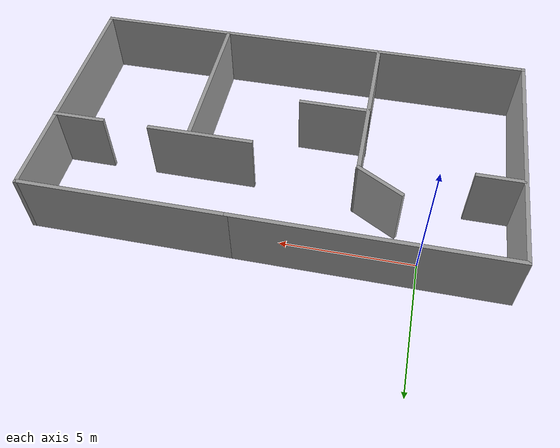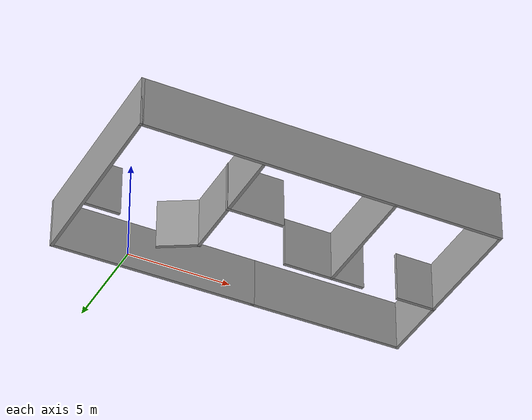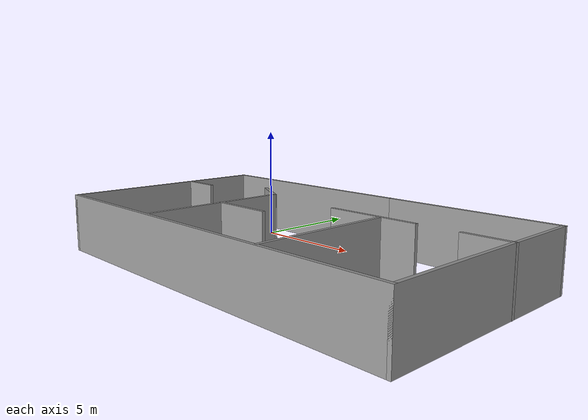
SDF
<?xml version='1.0'?>
<sdf version='1.7'>
  <model name='map'>
    <pose>5.42579 -3.774 0 0 -0 0</pose>
    <link name='Wall_0'>
      <collision name='Wall_0_Collision'>
        <geometry>
          <box>
            <size>10 0.15 2.5</size>
          </box>
        </geometry>
        <pose>0 0 1.25 0 -0 0</pose>
      </collision>
      <visual name='Wall_0_Visual'>
        <pose>0 0 1.25 0 -0 0</pose>
        <geometry>
          <box>
            <size>10 0.15 2.5</size>
          </box>
        </geometry>
        <material>
          <script>
            <uri>file://media/materials/scripts/gazebo.material</uri>
            <name>Gazebo/Grey</name>
          </script>
          <ambient>1 1 1 1</ambient>
        </material>
        <meta>
          <layer>0</layer>
        </meta>
      </visual>
      <pose>-3.75479 4.675 0 0 -0 3.14159</pose>
    </link>
    <link name='Wall_10'>
      <collision name='Wall_10_Collision'>
        <geometry>
          <box>
            <size>1.75 0.15 2.5</size>
          </box>
        </geometry>
        <pose>0 0 1.25 0 -0 0</pose>
      </collision>
      <visual name='Wall_10_Visual'>
        <pose>0 0 1.25 0 -0 0</pose>
        <geometry>
          <box>
            <size>1.75 0.15 2.5</size>
          </box>
        </geometry>
        <material>
          <script>
            <uri>file://media/materials/scripts/gazebo.material</uri>
            <name>Gazebo/Grey</name>
          </script>
          <ambient>1 1 1 1</ambient>
        </material>
        <meta>
          <layer>0</layer>
        </meta>
      </visual>
      <pose>-7.80322 1.28404 0 0 -0 0</pose>
    </link>
    <link name='Wall_14'>
      <collision name='Wall_14_Collision'>
        <geometry>
          <box>
            <size>4 0.15 2.5</size>
          </box>
        </geometry>
        <pose>0 0 1.25 0 -0 0</pose>
      </collision>
      <visual name='Wall_14_Visual'>
        <pose>0 0 1.25 0 -0 0</pose>
        <geometry>
          <box>
            <size>4 0.15 2.5</size>
          </box>
        </geometry>
        <material>
          <script>
            <uri>file://media/materials/scripts/gazebo.material</uri>
            <name>Gazebo/Grey</name>
          </script>
          <ambient>1 1 1 1</ambient>
        </material>
        <meta>
          <layer>0</layer>
        </meta>
      </visual>
      <pose>3.04622 1.283 0 0 -0 0</pose>
    </link>
    <link name='Wall_16'>
      <collision name='Wall_16_Collision'>
        <geometry>
          <box>
            <size>2 0.15 2.5</size>
          </box>
        </geometry>
        <pose>0 0 1.25 0 -0 0</pose>
      </collision>
      <visual name='Wall_16_Visual'>
        <pose>0 0 1.25 0 -0 0</pose>
        <geometry>
          <box>
            <size>2 0.15 2.5</size>
          </box>
        </geometry>
        <material>
          <script>
            <uri>file://media/materials/scripts/gazebo.material</uri>
            <name>Gazebo/Grey</name>
          </script>
          <ambient>1 1 1 1</ambient>
        </material>
        <meta>
          <layer>0</layer>
        </meta>
      </visual>
      <pose>7.75479 1.28129 0 0 -0 3.14159</pose>
    </link>
    <link name='Wall_18'>
      <collision name='Wall_18_Collision'>
        <geometry>
          <box>
            <size>6 0.15 2.5</size>
          </box>
        </geometry>
        <pose>0 0 1.25 0 -0 0</pose>
      </collision>
      <visual name='Wall_18_Visual'>
        <pose>0 0 1.25 0 -0 0</pose>
        <geometry>
          <box>
            <size>6 0.15 2.5</size>
          </box>
        </geometry>
        <material>
          <script>
            <uri>file://media/materials/scripts/gazebo.material</uri>
            <name>Gazebo/Grey</name>
          </script>
          <ambient>1 1 1 1</ambient>
        </material>
        <meta>
          <layer>0</layer>
        </meta>
      </visual>
      <pose>3.46188 -1.64933 0 0 -0 -1.5708</pose>
    </link>
    <link name='Wall_2'>
      <collision name='Wall_2_Collision'>
        <geometry>
          <box>
            <size>9.5 0.15 2.5</size>
          </box>
        </geometry>
        <pose>0 0 1.25 0 -0 0</pose>
      </collision>
      <visual name='Wall_2_Visual'>
        <pose>0 0 1.25 0 -0 0</pose>
        <geometry>
          <box>
            <size>9.5 0.15 2.5</size>
          </box>
        </geometry>
        <material>
          <script>
            <uri>file://media/materials/scripts/gazebo.material</uri>
            <name>Gazebo/Grey</name>
          </script>
          <ambient>1 1 1 1</ambient>
        </material>
        <meta>
          <layer>0</layer>
        </meta>
      </visual>
      <pose>-8.67979 -0 0 0 -0 -1.5708</pose>
    </link>
    <link name='Wall_22'>
      <collision name='Wall_22_Collision'>
        <geometry>
          <box>
            <size>2.75 0.15 2.5</size>
          </box>
        </geometry>
        <pose>0 0 1.25 0 -0 0</pose>
      </collision>
      <visual name='Wall_22_Visual'>
        <pose>0 0 1.25 0 -0 0</pose>
        <geometry>
          <box>
            <size>2.75 0.15 2.5</size>
          </box>
        </geometry>
        <material>
          <script>
            <uri>file://media/materials/scripts/gazebo.material</uri>
            <name>Gazebo/Grey</name>
          </script>
          <ambient>1 1 1 1</ambient>
        </material>
        <meta>
          <layer>0</layer>
        </meta>
      </visual>
      <pose>-1.60898 -1.15723 0 0 -0 0</pose>
    </link>
    <link name='Wall_24'>
      <collision name='Wall_24_Collision'>
        <geometry>
          <box>
            <size>2 0.15 2.5</size>
          </box>
        </geometry>
        <pose>0 0 1.25 0 -0 0</pose>
      </collision>
      <visual name='Wall_24_Visual'>
        <pose>0 0 1.25 0 -0 0</pose>
        <geometry>
          <box>
            <size>2 0.15 2.5</size>
          </box>
        </geometry>
        <material>
          <script>
            <uri>file://media/materials/scripts/gazebo.material</uri>
            <name>Gazebo/Grey</name>
          </script>
          <ambient>1 1 1 1</ambient>
        </material>
        <meta>
          <layer>0</layer>
        </meta>
      </visual>
      <pose>-3.69086 2.2075 0 0 -0 2.61799</pose>
    </link>
    <link name='Wall_3'>
      <collision name='Wall_3_Collision'>
        <geometry>
          <box>
            <size>17.5 0.15 2.5</size>
          </box>
        </geometry>
        <pose>0 0 1.25 0 -0 0</pose>
      </collision>
      <visual name='Wall_3_Visual'>
        <pose>0 0 1.25 0 -0 0</pose>
        <geometry>
          <box>
            <size>17.5 0.15 2.5</size>
          </box>
        </geometry>
        <material>
          <script>
            <uri>file://media/materials/scripts/gazebo.material</uri>
            <name>Gazebo/Grey</name>
          </script>
          <ambient>1 1 1 1</ambient>
        </material>
        <meta>
          <layer>0</layer>
        </meta>
      </visual>
      <pose>-0.004785 -4.675 0 0 -0 0</pose>
    </link>
    <link name='Wall_4'>
      <collision name='Wall_4_Collision'>
        <geometry>
          <box>
            <size>9.5 0.15 2.5</size>
          </box>
        </geometry>
        <pose>0 0 1.25 0 -0 0</pose>
      </collision>
      <visual name='Wall_4_Visual'>
        <pose>0 0 1.25 0 -0 0</pose>
        <geometry>
          <box>
            <size>9.5 0.15 2.5</size>
          </box>
        </geometry>
        <material>
          <script>
            <uri>file://media/materials/scripts/gazebo.material</uri>
            <name>Gazebo/Grey</name>
          </script>
          <ambient>1 1 1 1</ambient>
        </material>
        <meta>
          <layer>0</layer>
        </meta>
      </visual>
      <pose>8.67022 -0 0 0 -0 1.5708</pose>
    </link>
    <link name='Wall_5'>
      <collision name='Wall_5_Collision'>
        <geometry>
          <box>
            <size>7.65 0.15 2.5</size>
          </box>
        </geometry>
        <pose>0 0 1.25 0 -0 0</pose>
      </collision>
      <visual name='Wall_5_Visual'>
        <pose>0 0 1.25 0 -0 0</pose>
        <geometry>
          <box>
            <size>7.65 0.15 2.5</size>
          </box>
        </geometry>
        <material>
          <script>
            <uri>file://media/materials/scripts/gazebo.material</uri>
            <name>Gazebo/Grey</name>
          </script>
          <ambient>1 1 1 1</ambient>
        </material>
        <meta>
          <layer>0</layer>
        </meta>
      </visual>
      <pose>4.92021 4.675 0 0 -0 3.14159</pose>
    </link>
    <link name='Wall_7'>
      <collision name='Wall_7_Collision'>
        <geometry>
          <box>
            <size>6.5 0.15 2.5</size>
          </box>
        </geometry>
        <pose>0 0 1.25 0 -0 0</pose>
      </collision>
      <visual name='Wall_7_Visual'>
        <pose>0 0 1.25 0 -0 0</pose>
        <geometry>
          <box>
            <size>6.5 0.15 2.5</size>
          </box>
        </geometry>
        <material>
          <script>
            <uri>file://media/materials/scripts/gazebo.material</uri>
            <name>Gazebo/Grey</name>
          </script>
          <ambient>1 1 1 1</ambient>
        </material>
        <meta>
          <layer>0</layer>
        </meta>
      </visual>
      <pose>-2.88978 -1.43 0 0 -0 1.5708</pose>
    </link>
    <static>1</static>
  </model>
</sdf>
